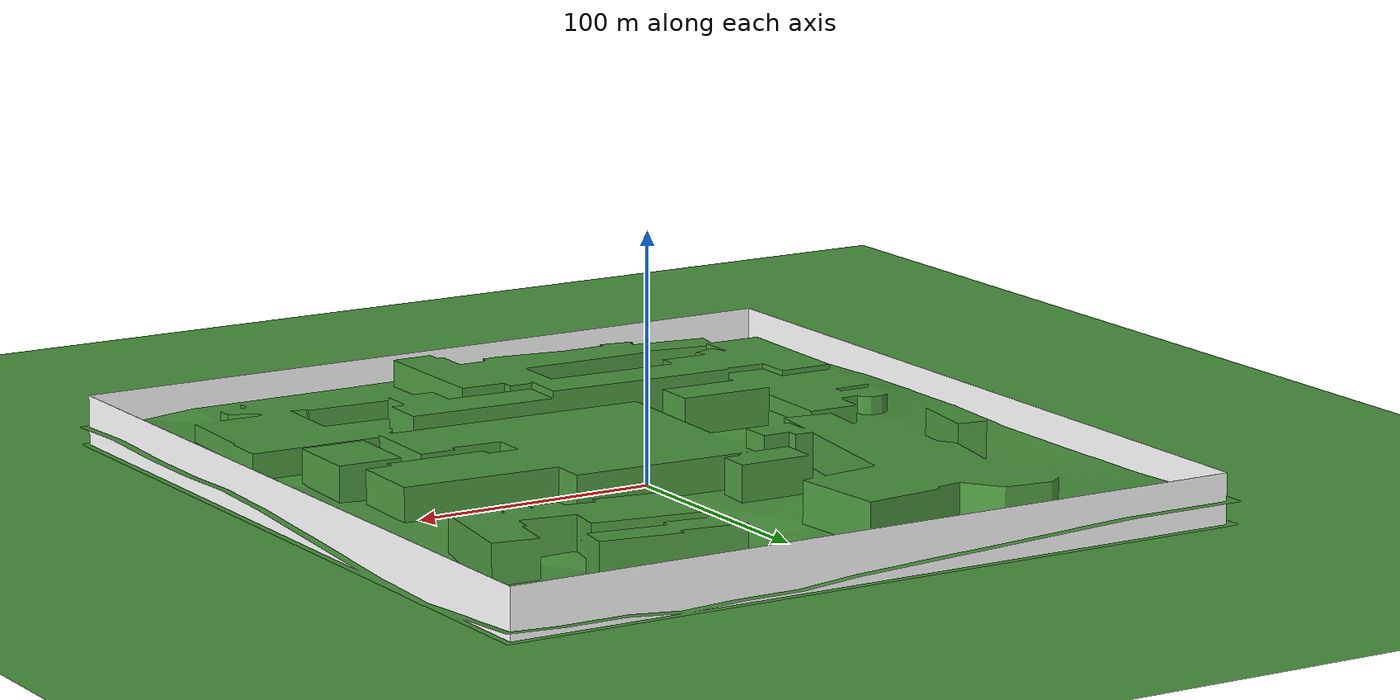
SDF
<sdf version='1.6'>
  <world name='default'>

    <!-- ********** World Properties ********** -->
    <light name='sun' type='directional'>
      <cast_shadows>1</cast_shadows>
      <pose frame=''>0 0 10 0 -0 0</pose>
      <diffuse>0.8 0.8 0.8 1</diffuse>
      <specular>0.2 0.2 0.2 1</specular>
      <attenuation>
        <range>1000</range>
        <constant>0.9</constant>
        <linear>0.01</linear>
        <quadratic>0.001</quadratic>
      </attenuation>
      <direction>-0.5 0.1 -0.9</direction>
    </light>
    <gravity>0 0 -9.8</gravity>
    <magnetic_field>6e-06 2.3e-05 -4.2e-05</magnetic_field>
    <atmosphere type='adiabatic'/>
    <physics name='default_physics' default='0' type='ode'>
      <max_step_size>0.001</max_step_size>
      <real_time_factor>1</real_time_factor>
      <real_time_update_rate>1000</real_time_update_rate>
    </physics>
    <scene>
      <ambient>0.4 0.4 0.4 1</ambient>
      <background>0.7 0.7 0.7 1</background>
      <shadows>0</shadows>
      <sky>
        <clouds>
          <speed>10</speed>
        </clouds>
      </sky>
      <grid>0</grid>
      <origin_visual>0</origin_visual>
    </scene>
    <audio>
      <device>default</device>
    </audio>
    <wind/>
    <spherical_coordinates>
      <surface_model>EARTH_WGS84</surface_model>
      <latitude_deg>0</latitude_deg>
      <longitude_deg>0</longitude_deg>
      <elevation>0</elevation>
      <heading_deg>0</heading_deg>
    </spherical_coordinates>
    <gui fullscreen='0'>
      <camera name='user_camera'>
        <pose frame=''>75.1038 -38.4821 47.6239 0 0.543643 2.34419</pose>
        <view_controller>orbit</view_controller>
        <projection_type>perspective</projection_type>
      </camera>
    </gui>

    <!-- ********** Models ********** -->
    <model name='ground_plane'>
      <pose>0 0 0 0 0 0</pose>
      <static>1</static>
      <link name='link'>
        <collision name='collision'>
          <geometry>
            <plane>
              <normal>0 0 1</normal>
              <size>500 500</size>
            </plane>
          </geometry>
          <surface>
            <friction>
              <ode>
                <mu>100</mu>
                <mu2>50</mu2>
              </ode>
              <torsional>
                <ode/>
              </torsional>
            </friction>
            <contact>
              <ode/>
            </contact>
            <bounce/>
          </surface>
          <max_contacts>10</max_contacts>
        </collision>
        <visual name='visual'>
          <cast_shadows>0</cast_shadows>
          <geometry>
            <plane>
              <normal>0 0 1</normal>
              <size>500 500</size>
            </plane>
          </geometry>
          <material>
            <script>
            <uri>model://corridor/materials/scripts</uri>
            <uri>model://corridor/materials/textures</uri>
            <name>Gazebo/Grass</name>
            </script>
          </material>
        </visual>
        <self_collide>0</self_collide>
        <enable_wind>0</enable_wind>
        <kinematic>0</kinematic>
      </link>
    </model>

    <model name='Campus'>
      <include>
        <uri>model://campus</uri>
        <pose>0 0 0 0 0 0</pose>
      </include>
    </model>

    <model name='Bounding_walls'>
      <include>
        <uri>model://bounding_walls</uri>
        <pose>0 0 0 0 0 0</pose>
      </include>
    </model>

    <plugin name="ActorPosesPlugin" filename="libActorPosesPlugin.so"></plugin>

  </world>
</sdf>

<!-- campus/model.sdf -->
<sdf version='1.6'>
  <model name="Campus">
      <static>1</static>
      <link name="campus">
        <collision name="collision">
          <geometry>
            <mesh>
              <uri>model://campus/meshes/campus_eng_only.dae</uri>
            </mesh>
          </geometry>
        </collision>
        <visual name="visual">
          <geometry>
            <mesh>
              <uri>model://campus/meshes/campus_eng_only.dae</uri>
            </mesh>
          </geometry>
          <material>
            <script>
              <uri>model://corridor/materials/scripts</uri>
              <uri>model://corridor/materials/textures</uri>
              <name>Gazebo/Grass</name>
            </script>
            <ambient>1 1 1 1</ambient>
          </material>
        </visual>
      </link>
  </model>
</sdf>

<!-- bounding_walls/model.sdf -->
<sdf version='1.6'>
  <model name='bounding_walls'>
    <static>1</static>

    <link name='Wall_1'>
      <collision name='Wall_1_Collision'>
        <geometry>
          <box>
            <size>309 0.1 20</size>
          </box>
        </geometry>
        <pose frame=''>0 0 0 0 0 0</pose>
      </collision>
      <visual name='Wall_1_Visual'>
        <pose frame=''>0 0 0 0 0 0</pose>
        <geometry>
          <box>
            <size>309 0.1 20</size>
          </box>
        </geometry>
        <material>
          <script>
            <uri>model://corridor/materials/scripts</uri>
            <uri>model://corridor/materials/textures</uri>
            <name>Gazebo/Brick</name>
          </script>
          <ambient>1 1 1 1</ambient>
        </material>
        <meta>
          <layer>0</layer>
        </meta>
      </visual>
      <pose frame=''>-0.5 -172 10 0 0 0</pose>
    </link>

    <link name='Wall_2'>
      <collision name='Wall_2_Collision'>
        <geometry>
          <box>
            <size>0.1 334 20</size>
          </box>
        </geometry>
        <pose frame=''>0 0 0 0 0 0</pose>
      </collision>
      <visual name='Wall_2_Visual'>
        <pose frame=''>0 0 0 0 0 0</pose>
        <geometry>
          <box>
            <size>0.1 334 20</size>
          </box>
        </geometry>
        <material>
          <script>
            <name>Gazebo/Brick</name>
          </script>
          <ambient>1 1 1 1</ambient>
        </material>
        <meta>
          <layer>0</layer>
        </meta>
      </visual>
      <pose frame=''>154 -5 10 0 0 0</pose>
    </link>

    <link name='Wall_3'>
      <collision name='Wall_3_Collision'>
        <geometry>
          <box>
            <size>309 0.1 20</size>
          </box>
        </geometry>
        <pose frame=''>0 0 0 0 0 0</pose>
      </collision>
      <visual name='Wall_3_Visual'>
        <pose frame=''>0 0 0 0 0 0</pose>
        <geometry>
          <box>
            <size>309 0.1 20</size>
          </box>
        </geometry>
        <material>
          <script>
            <name>Gazebo/Brick</name>
          </script>
          <ambient>1 1 1 1</ambient>
        </material>
        <meta>
          <layer>0</layer>
        </meta>
      </visual>
      <pose frame=''>-0.5 162 10 0 0 0 0</pose>
    </link>

    <link name='Wall_4'>
      <collision name='Wall_4_Collision'>
        <geometry>
          <box>
            <size>0.1 334 20</size>
          </box>
        </geometry>
        <pose frame=''>0 0 0 0 0 0</pose>
      </collision>
      <visual name='Wall_4_Visual'>
        <pose frame=''>0 0 0 0 0 0</pose>
        <geometry>
          <box>
            <size>0.1 334 20</size>
          </box>
        </geometry>
        <material>
          <script>
            <name>Gazebo/Brick</name>
          </script>
          <ambient>1 1 1 1</ambient>
        </material>
        <meta>
          <layer>0</layer>
        </meta>
      </visual>
      <pose frame=''>-155 -5 10 0 0 0</pose>
    </link>

  </model>
</sdf>
